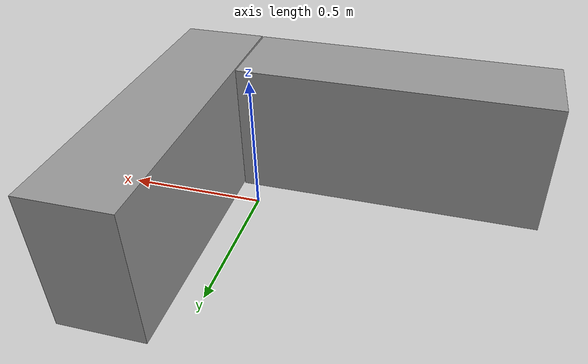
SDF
<?xml version='1.0'?>
<sdf version='1.7'>
  <model name='kitchen_with_coll'>
    <link name='link_0'>
      <inertial>
        <mass>91.57</mass>
        <inertia>
          <ixx>10.9134</ixx>
          <ixy>0</ixy>
          <ixz>0</ixz>
          <iyy>2.44873</iyy>
          <iyz>0</iyz>
          <izz>9.81194</izz>
        </inertia>
        <pose>0 0 0 0 -0 0</pose>
      </inertial>
      <pose>0.235405 0.162265 0.248636 0 -0 0.006368</pose>
      <gravity>1</gravity>
      <self_collide>0</self_collide>
      <kinematic>0</kinematic>
      <enable_wind>0</enable_wind>
      <visual name='visual'>
        <pose>0 0 0 0 -0 0</pose>
        <geometry>
          <box>
            <size>0.297114 1.09433 0.482309</size>
          </box>
        </geometry>
        <material>
          <lighting>0</lighting>
          <script>
            <uri>file://media/materials/scripts/gazebo.material</uri>
            <name>Gazebo/Grey</name>
          </script>
          <shader type='pixel'>
            <normal_map>__default__</normal_map>
          </shader>
          <ambient>0.3 0.3 0.3 1</ambient>
          <diffuse>0.7 0.7 0.7 1</diffuse>
          <specular>0.01 0.01 0.01 1</specular>
          <emissive>0 0 0 1</emissive>
        </material>
        <transparency>0</transparency>
        <cast_shadows>1</cast_shadows>
      </visual>
      <collision name='collision'>
        <laser_retro>0</laser_retro>
        <max_contacts>10</max_contacts>
        <pose>0 0 0 0 -0 0</pose>
        <geometry>
          <box>
            <size>0.297114 1.09433 0.482309</size>
          </box>
        </geometry>
        <surface>
          <friction>
            <ode>
              <mu>1</mu>
              <mu2>1</mu2>
              <fdir1>0 0 0</fdir1>
              <slip1>0</slip1>
              <slip2>0</slip2>
            </ode>
            <torsional>
              <coefficient>1</coefficient>
              <patch_radius>0</patch_radius>
              <surface_radius>0</surface_radius>
              <use_patch_radius>1</use_patch_radius>
              <ode>
                <slip>0</slip>
              </ode>
            </torsional>
          </friction>
          <bounce>
            <restitution_coefficient>0</restitution_coefficient>
            <threshold>1e+06</threshold>
          </bounce>
          <contact>
            <collide_without_contact>0</collide_without_contact>
            <collide_without_contact_bitmask>1</collide_without_contact_bitmask>
            <collide_bitmask>1</collide_bitmask>
            <ode>
              <soft_cfm>0</soft_cfm>
              <soft_erp>0.2</soft_erp>
              <kp>1e+13</kp>
              <kd>1</kd>
              <max_vel>0.01</max_vel>
              <min_depth>0</min_depth>
            </ode>
            <bullet>
              <split_impulse>1</split_impulse>
              <split_impulse_penetration_threshold>-0.01</split_impulse_penetration_threshold>
              <soft_cfm>0</soft_cfm>
              <soft_erp>0.2</soft_erp>
              <kp>1e+13</kp>
              <kd>1</kd>
            </bullet>
          </contact>
        </surface>
      </collision>
    </link>
    <link name='link_0_clone'>
      <inertial>
        <mass>91.57</mass>
        <inertia>
          <ixx>10.9134</ixx>
          <ixy>0</ixy>
          <ixz>0</ixz>
          <iyy>2.44873</iyy>
          <iyz>0</iyz>
          <izz>9.81194</izz>
        </inertia>
        <pose>0 0 0 0 -0 0</pose>
      </inertial>
      <pose>-0.463644 -0.234468 0.248636 0 -0 1.57049</pose>
      <gravity>1</gravity>
      <self_collide>0</self_collide>
      <kinematic>0</kinematic>
      <enable_wind>0</enable_wind>
      <visual name='visual'>
        <pose>0 0 0 0 -0 0</pose>
        <geometry>
          <box>
            <size>0.297114 1.09433 0.482309</size>
          </box>
        </geometry>
        <material>
          <lighting>0</lighting>
          <script>
            <uri>file://media/materials/scripts/gazebo.material</uri>
            <name>Gazebo/Grey</name>
          </script>
          <shader type='pixel'>
            <normal_map>__default__</normal_map>
          </shader>
          <ambient>0.3 0.3 0.3 1</ambient>
          <diffuse>0.7 0.7 0.7 1</diffuse>
          <specular>0.01 0.01 0.01 1</specular>
          <emissive>0 0 0 1</emissive>
        </material>
        <transparency>0</transparency>
        <cast_shadows>1</cast_shadows>
      </visual>
      <collision name='collision'>
        <laser_retro>0</laser_retro>
        <max_contacts>10</max_contacts>
        <pose>0 0 0 0 -0 0</pose>
        <geometry>
          <box>
            <size>0.297114 1.09433 0.482309</size>
          </box>
        </geometry>
        <surface>
          <friction>
            <ode>
              <mu>1</mu>
              <mu2>1</mu2>
              <fdir1>0 0 0</fdir1>
              <slip1>0</slip1>
              <slip2>0</slip2>
            </ode>
            <torsional>
              <coefficient>1</coefficient>
              <patch_radius>0</patch_radius>
              <surface_radius>0</surface_radius>
              <use_patch_radius>1</use_patch_radius>
              <ode>
                <slip>0</slip>
              </ode>
            </torsional>
          </friction>
          <bounce>
            <restitution_coefficient>0</restitution_coefficient>
            <threshold>1e+06</threshold>
          </bounce>
          <contact>
            <collide_without_contact>0</collide_without_contact>
            <collide_without_contact_bitmask>1</collide_without_contact_bitmask>
            <collide_bitmask>1</collide_bitmask>
            <ode>
              <soft_cfm>0</soft_cfm>
              <soft_erp>0.2</soft_erp>
              <kp>1e+13</kp>
              <kd>1</kd>
              <max_vel>0.01</max_vel>
              <min_depth>0</min_depth>
            </ode>
            <bullet>
              <split_impulse>1</split_impulse>
              <split_impulse_penetration_threshold>-0.01</split_impulse_penetration_threshold>
              <soft_cfm>0</soft_cfm>
              <soft_erp>0.2</soft_erp>
              <kp>1e+13</kp>
              <kd>1</kd>
            </bullet>
          </contact>
        </surface>
      </collision>
    </link>
    <static>0</static>
    <allow_auto_disable>1</allow_auto_disable>
  </model>
</sdf>
